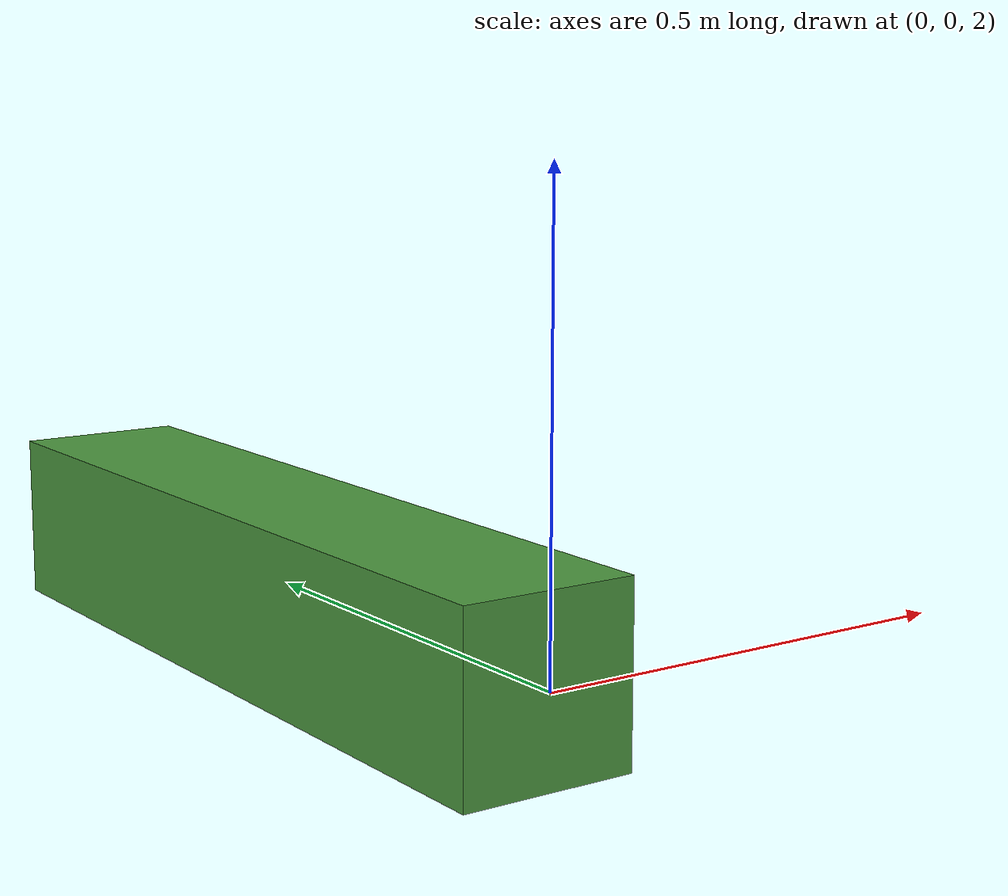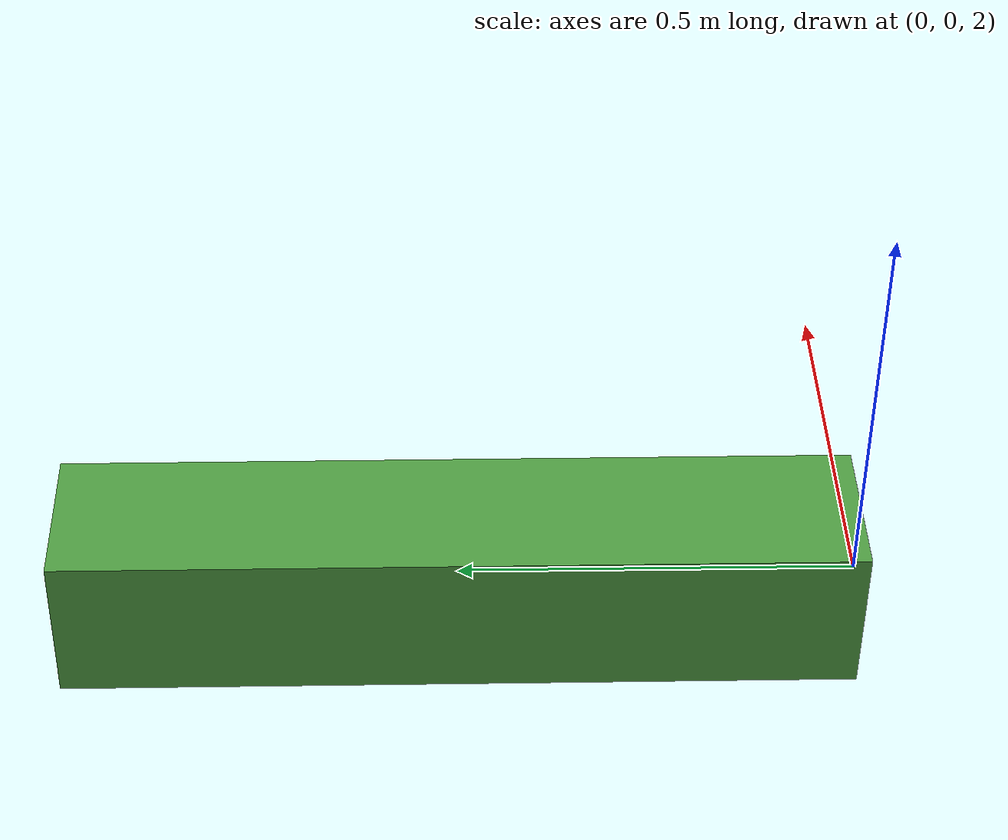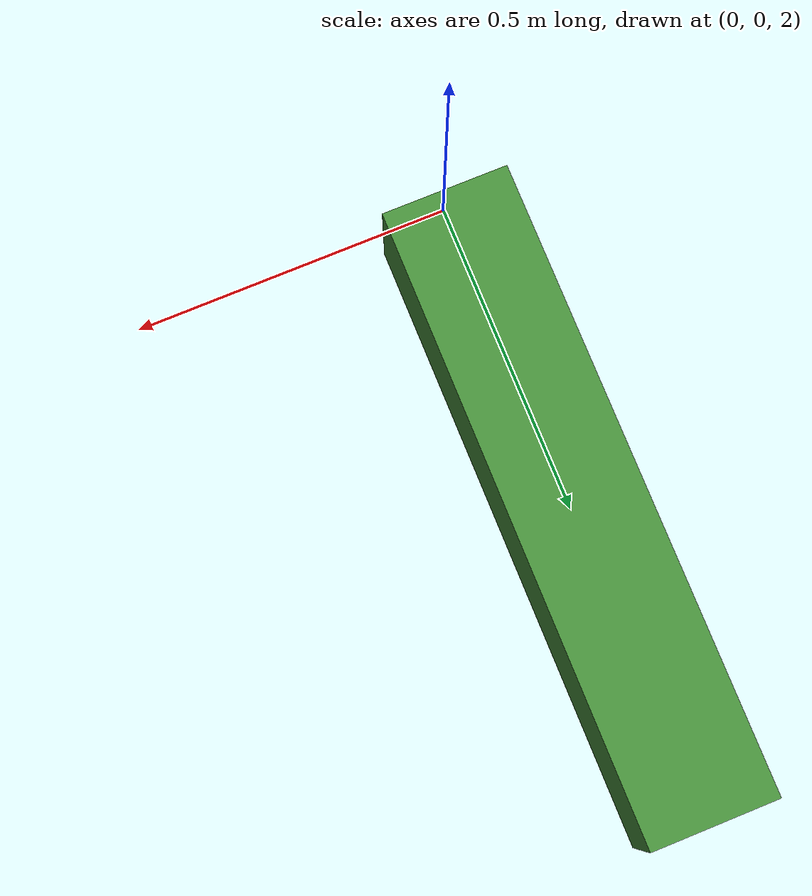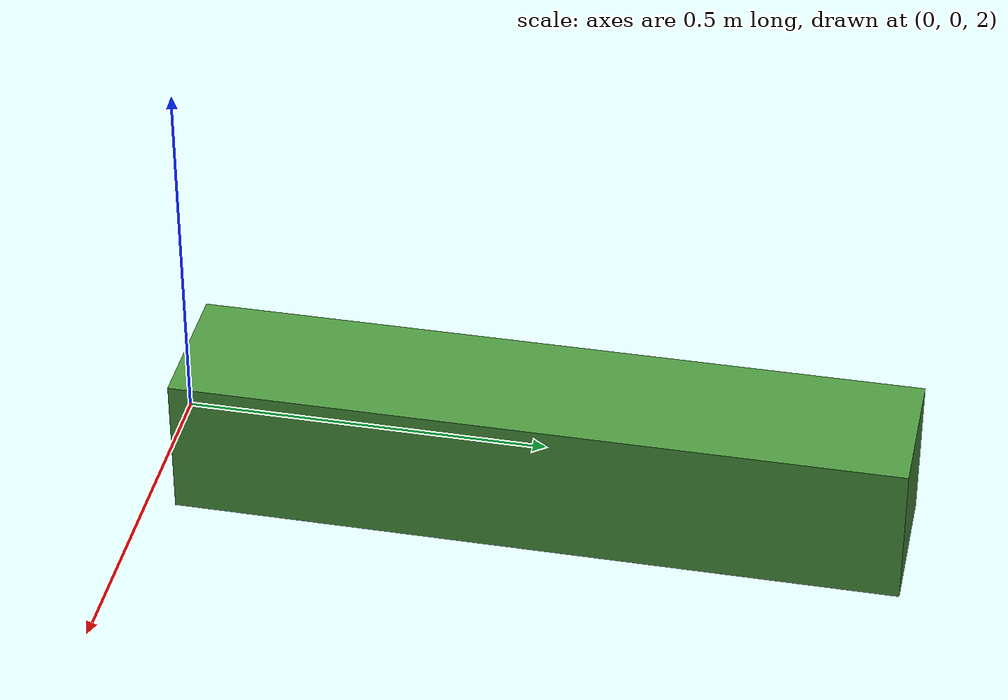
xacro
<?xml version="1.0"?>
<robot name="continuous_pendulum"
       xmlns:xi="http://www.w3.org/2001/XInclude"
       xmlns:gazebo="http://playerstage.sourceforge.net/gazebo/xmlschema/#gz"
       xmlns:model="http://playerstage.sourceforge.net/gazebo/xmlschema/#model"
       xmlns:sensor="http://playerstage.sourceforge.net/gazebo/xmlschema/#sensor"
       xmlns:body="http://playerstage.sourceforge.net/gazebo/xmlschema/#body"
       xmlns:geom="http://playerstage.sourceforge.net/gazebo/xmlschema/#geom"
       xmlns:joint="http://playerstage.sourceforge.net/gazebo/xmlschema/#joint"
       xmlns:interface="http://playerstage.sourceforge.net/gazebo/xmlschema/#interface"
       xmlns:rendering="http://playerstage.sourceforge.net/gazebo/xmlschema/#rendering"
       xmlns:renderable="http://playerstage.sourceforge.net/gazebo/xmlschema/#renderable"
       xmlns:controller="http://playerstage.sourceforge.net/gazebo/xmlschema/#controller"
       xmlns:physics="http://playerstage.sourceforge.net/gazebo/xmlschema/#physics">

  <link name="world"/>
  <!--
     A pendulum constructed from single continuous link and a mass with some moment of inertia
  -->
  <joint name="link_joint" type="continuous" >
    <axis xyz="1 0 0" />
    <parent link="world" />
    <origin xyz="0 0 2" rpy="0 0 0" />
    <child link="link" />
    <dynamics damping="1000.0" />
  </joint>
  <link name="link">
    <inertial >
      <mass value="1.0" />
      <origin xyz="0 1 0" />
      <inertia  ixx="0.0" ixy="0.0"  ixz="0.0"  iyy="0.0"  iyz="0.0"  izz="0.0" />
    </inertial>
    <visual >
      <origin xyz="0 0.5 0" rpy="0 0 0" />
      <geometry>
        <box size="0.2 1.0 0.2" />
      </geometry>
    </visual>
    <collision >
      <origin xyz="0 0.5 0" rpy="0 0 0" />
      <geometry>
        <box size="0.2 1.0 0.2" />
      </geometry>
    </collision>
  </link>
  <gazebo reference="link">
    <material>Gazebo/GrassFloor</material>
    <turnGravityOff>false</turnGravityOff>
  </gazebo>

  <gazebo>
      <!-- PR2_ACTARRAY -->
      <controller:gazebo_ros_controller_manager name="gazebo_ros_controller_manager" plugin="libgazebo_ros_controller_manager.so">
        <alwaysOn>true</alwaysOn>
        <updateRate>1000.0</updateRate>
        <interface:audio name="gazebo_ros_controller_manager_dummy_iface" />
      </controller:gazebo_ros_controller_manager>

      <!-- gazebo_ros_p3d for position groundtruth -->
      <controller:gazebo_ros_p3d name="p3d_link_controller" plugin="libgazebo_ros_p3d.so">
          <alwaysOn>true</alwaysOn>
          <updateRate>100.0</updateRate>
          <bodyName>link</bodyName>
          <topicName>link_pose</topicName>
          <frameName>map</frameName>
          <interface:position name="p3d_link_position"/>
      </controller:gazebo_ros_p3d>
  </gazebo>

  <!-- mechanism controls -->
  <transmission type="SimpleTransmission" name="link_trans">
    <actuator name="link_motor" />
    <joint name="link_joint" />
    <mechanicalReduction>1</mechanicalReduction>
    <motorTorqueConstant>1</motorTorqueConstant>
  </transmission>

</robot>
